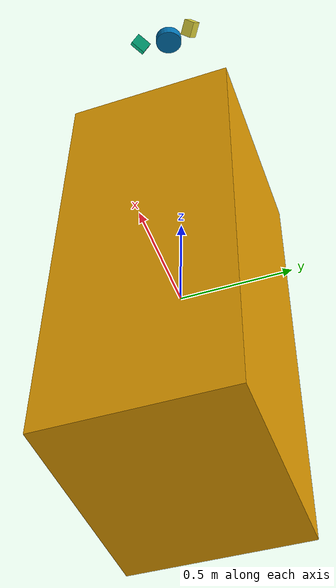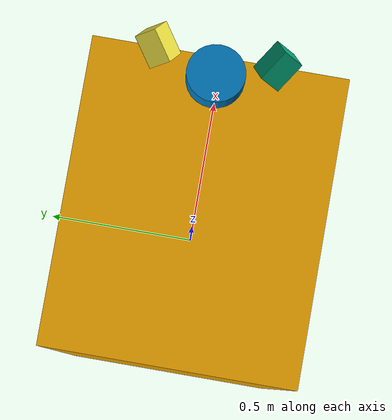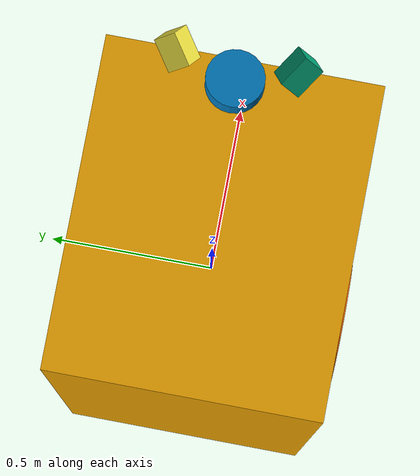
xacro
<?xml version="1.0"?>
<robot xmlns:xacro="http://www.ros.org/wiki/xacro" name="insert_robot_name_here">
      <link name="base">
        <visual>
          <geometry>
            <box size = "0.94 0.78 1.98"/>
          </geometry>
        </visual>
      </link>

   <link name="laser_vert_bottom">
        <visual>
          <geometry>
            <box size = "0.062 0.062 0.087"/>
          </geometry>
          <origin rpy="3.1355 -1.3045 0.0025" xyz="0.3158 -0.0021 0.5100"/>
        </visual>
      </link>

   <link name="laser_vert_top_right">
        <visual>
          <geometry>
            <box size = "0.062 0.062 0.087"/>
          </geometry>
          <origin rpy="-1.1760 0.6313 -1.9377" xyz="0.2978 -0.1450 1.8451"/>
        </visual>
      </link>

   <link name="laser_vert_top_left">
        <visual>
          <geometry>
            <box size = "0.062 0.062 0.087"/>
          </geometry>
          <origin rpy="1.1780 0.6198 1.9560" xyz="0.2997 0.1531 1.8443"/>
        </visual>
      </link>

   <link name="laser_horiz">
        <visual>
          <geometry>
            <cylinder length="0.052" radius="0.072"/>
          </geometry>
          <origin rpy="-0.0012 0.1146 -0.0015" xyz="0.2325 0.0001 1.9201"/>
        </visual>
      </link>

   <joint name="base_laser_vert_bottom_joint" type="fixed">
      <parent link="base"/>
      <child link="laser_vert_bottom"/>
     </joint>

   <joint name="base_laser_vert_top_right_joint" type="fixed">
      <parent link="base"/>
      <child link="laser_vert_top_right"/>
     </joint>

   <joint name="base_laser_vert_top_left_joint" type="fixed">
      <parent link="base"/>
      <child link="laser_vert_top_left"/>
     </joint>

   <joint name="base_laser_horiz_joint" type="fixed">
      <parent link="base"/>
      <child link="laser_horiz"/>
     </joint>

<xacro:macro name="xacro_name" params="suffix reflect">
   <link name="wheel_${suffix}">
        <visual>
          <geometry>
            <cylinder length ="0.05" radius="0.2"/>
          </geometry>
          <origin xyz="-0.10 ${reflect * -0.4} 0.0" rpy="${-pi/2} 0.0 0.0" />
        </visual>
      </link>

   <joint name="base_wheel_${suffix}" type="continuous">
      <parent link="base"/>
      <child link="wheel_${suffix}"/>
     </joint>

</xacro:macro>
<xacro:xacro_name suffix="left" reflect="1" />
<xacro:xacro_name suffix="right" reflect="1" />

<link name="wheel_center">
        <visual>
          <geometry>
            <cylinder length ="0.05" radius="0.15"/>
          </geometry>
          <origin rpy="${-pi/2} 0.0 0.0" xyz="0.10 0.0 0.0"/>
        </visual>
      </link>

   <joint name="base_wheel_center" type="continuous">
      <parent link="base"/>
      <child link="wheel_center"/>
     </joint>

    </robot>
